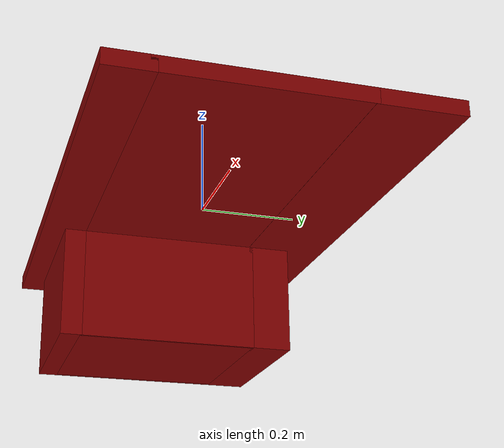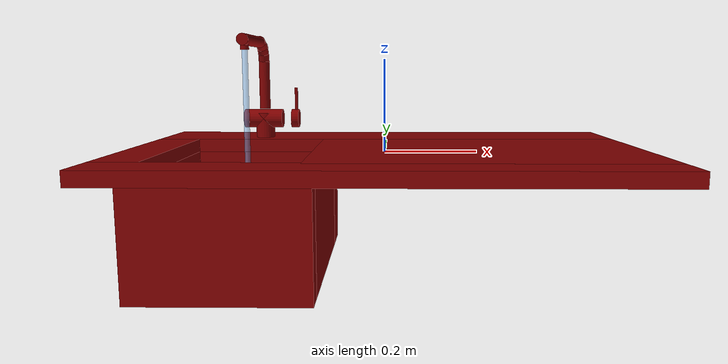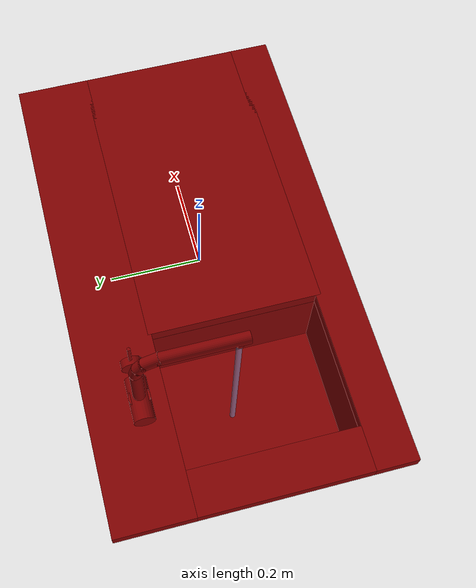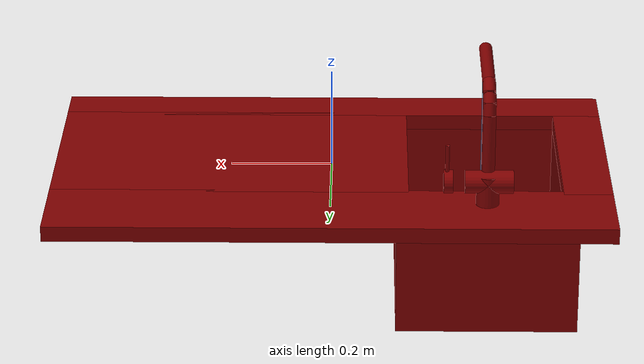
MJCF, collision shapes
<?xml version='1.0' encoding='UTF-8'?>
<mujoco model="model">
  <option timestep="0.002" gravity="0.0 0.0 -9.81"/>
  <compiler angle="radian"/>
  <asset>
    <mesh file="visuals/handle.obj" name="handle_vis"/>
    <mesh file="visuals/Body001.obj" name="Body001_vis"/>
    <mesh file="visuals/spout.obj" name="spout_vis"/>
    <texture file="visuals/T_BC001.png" name="Body001_material" type="2d"/>
    <material name="Body001_material" rgba="1 1 1 1.0" texture="Body001_material" shininess="0.141421377658844" specular="0.5"/>
    <texture file="visuals/T_BC001.png" name="handle_material" type="2d"/>
    <material name="handle_material" rgba="1 1 1 1.0" texture="handle_material" shininess="0.141421377658844" specular="1"/>
    <texture file="visuals/T_BC001.png" name="spout_material" type="2d"/>
    <material name="spout_material" rgba="1 1 1 1.0" texture="spout_material" shininess="0.141421377658844" specular="2"/>
  </asset>
  <default>
    <default class="visual">
      <geom conaffinity="0" contype="0" group="1" type="mesh"/>
    </default>
    <default class="collision">
      <geom group="0" rgba="0.5 0 0 0.5" solimp="0.998 0.998 0.001" solref="0.001 2"/>
    </default>
    <default class="spawn">
      <geom group="0" rgba="1 1 1 0.5" contype="0" conaffinity="0"/>
      <site group="0" rgba="1 1 1 0.5"/>
    </default>
    <default class="region">
      <geom group="1" conaffinity="0" contype="0" rgba="0 1 0 0"/>
    </default>
  </default>
  <worldbody>
    <body>
      <body name="object">
        <geom mesh="Body001_vis" type="mesh" solimp="0.998 0.998 0.001" solref="0.001 1" friction="0.95 0.3 0.1" class="visual" material="Body001_material"/>
        <geom class="collision" type="box" pos="-0.00000001 0.23052580 -0.00630823" size="0.5523019433021545 0.08532816916704178 0.015385085716843605" quat="1.0 0.0 0.0 0.0"/>
        <geom class="collision" type="box" pos="-0.50409359 -0.04093534 -0.00627403" size="0.04820831120014191 0.19975543022155762 0.015350846573710442" quat="1.0 0.0 0.0 0.0"/>
        <geom class="collision" type="box" pos="-0.30485210 -0.03877223 -0.22675543" size="0.17205308377742767 0.1881377249956131 0.027469275519251823" quat="1.0 0.0 0.0 0.0"/>
        <geom class="collision" type="box" pos="0.20008494 -0.04150404 -0.00616147" size="0.3522171974182129 0.19399771094322205 0.015238390304148197" quat="1.0 0.0 0.0 0.0"/>
        <geom class="collision" type="box" pos="0.00000003 -0.26968676 -0.00631686" size="0.5523020625114441 0.046171244233846664 0.015393725596368313" quat="1.0 0.0 0.0 0.0"/>
        <geom class="collision" type="cylinder" pos="-0.30414626 0.20200471 0.03748910" size="0.02263602614402771 0.032472364604473114" quat="1.0 0.0 0.0 0.0"/>
        <geom class="collision" type="cylinder" pos="-0.30664855 0.20200471 0.05597730" size="0.02263602614402771 0.04693588986992836" quat="0.7071068286895752 -0.0 0.7071067690849304 0.0"/>
        <geom class="collision" type="box" pos="-0.30644396 0.19004029 -0.13795899" size="0.17874878644943237 0.04484264552593231 0.11626558005809784" quat="1.0 0.0 0.0 0.0"/>
        <geom class="collision" type="box" pos="-0.47053891 -0.04093534 -0.13795896" size="0.014653638936579227 0.19975543022155762 0.11626549065113068" quat="1.0 0.0 0.0 0.0"/>
        <geom class="collision" type="box" pos="-0.13991372 -0.04150404 -0.13795896" size="0.012218543328344822 0.19399771094322205 0.11626560986042023" quat="1.0 0.0 0.0 0.0"/>
        <geom class="collision" type="box" pos="-0.30644375 -0.24599471 -0.13795905" size="0.17874884605407715 0.022479183971881866 0.11626563966274261" quat="1.0 0.0 0.0 0.0"/>
        <body name="handle">
          <joint axis="1.0 0.0 0.0" pos="-0.23382893 0.20199634 0.05637100" limited="true" name="handle_temp_joint" type="hinge" range="-0.7853981633974483 0.7853981633974483" damping="0.5" frictionloss="1" armature="2"/>
          <joint axis="0.0 1.0 0.0" pos="-0.23382893 0.20199634 0.05637100" limited="true" name="handle_joint" type="hinge" range="0 0.5" damping="0.5" frictionloss="1" armature="2"/>
          <geom mesh="handle_vis" type="mesh" solimp="0.998 0.998 0.001" solref="0.001 1" friction="0.95 0.3 0.1" class="visual" material="handle_material"/>
          <geom class="collision" type="cylinder" pos="-0.22746639 0.20200471 0.05597730" size="0.02263602614402771 0.00895604770630598" quat="0.7071068286895752 -0.0 0.7071067690849304 0.0"/>
          <geom name="handle_main" class="collision" type="cylinder" pos="-0.22510909 0.20251421 0.10505282" size="0.0038201643619686365 0.027743283659219742" quat="1.0 0.0 0.0 0.0"/>
        </body>
        <body name="spout">
          <joint axis="0.0 0.0 1.0" pos="-0.30409655 0.20199902 0.16200802" limited="true" name="spout_joint" range="-0.7330382858376184 0.7330382858376184" type="hinge" damping="10"/>
          <site type="cylinder" rgba="0.5 0.75 1 0.5" size="0.006178523879498243 0.230135977268219" pos="-0.30411327 -0.00005578 -0.00799942" name="water"/>
          <geom mesh="spout_vis" type="mesh" solimp="0.998 0.998 0.001" solref="0.001 1" friction="0.95 0.3 0.1" class="visual" material="spout_material"/>
          <geom class="collision" type="cylinder" pos="-0.30389604 0.20180039 0.13920516" size="0.012858516536653042 0.05865353345870972" quat="1.0 0.0 0.0 0.0"/>
          <geom class="collision" type="cylinder" pos="-0.30408752 -0.00016541 0.22742864" size="0.009285930544137955 0.0064205266535282135" quat="1.0 0.0 0.0 0.0"/>
          <geom class="collision" type="cylinder" pos="-0.30389604 0.19930030 0.20779136" size="0.012858516536653042 0.01307611633092165" quat="0.9920640587806702 0.12573325634002686 0.0 0.0"/>
          <geom class="collision" type="cylinder" pos="-0.30389604 0.19008127 0.22592524" size="0.012858516536653042 0.013315660879015923" quat="0.9472011923789978 0.32063984870910645 0.0 0.0"/>
          <geom class="collision" type="cylinder" pos="-0.30389604 0.17119451 0.23816288" size="0.012858516536653042 0.019824042916297913" quat="0.8263651132583618 0.5631347298622131 0.0 0.0"/>
          <geom class="collision" type="cylinder" pos="-0.30389604 0.06998702 0.24283972" size="0.012858516536653042 0.09095170348882675" quat="0.7071067094802856 0.70710688829422 0.0 0.0" name="spout_main"/>
        </body>
        <geom class="region" name="reg_basin" type="box" pos="-0.303405765 -0.039165725 -0.09221706" size="0.135578525 0.16829591500000002 0.09629969000000001"/>
        <geom class="region" name="reg_main" type="box" pos="0.0 -2.000000000002e-06 -0.12257388500000001" size="0.553302 0.31685598 0.13265074500000001"/>
      </body>
    </body>
  </worldbody>
  <actuator>
    <motor name="handle_joint_actuator" joint="handle_joint" gear="10"/>
    <motor name="handle_temp_joint_actuator" joint="handle_temp_joint" gear="10"/>
    <motor name="spout_joint_actuator" joint="spout_joint" gear="10"/>
  </actuator>
</mujoco>
